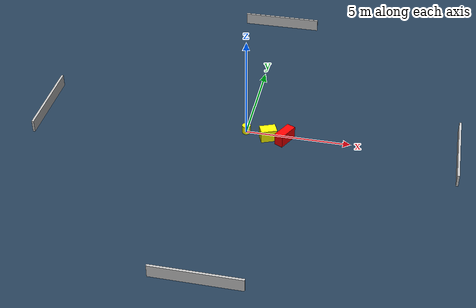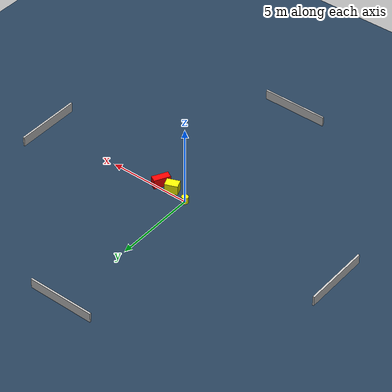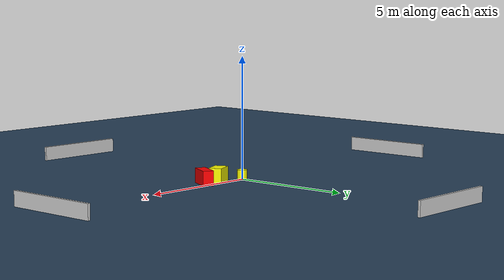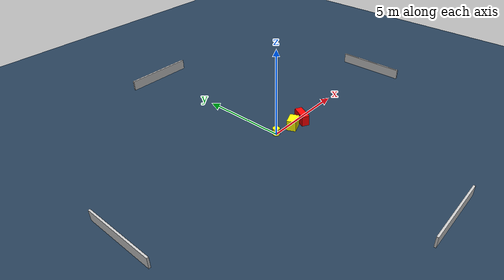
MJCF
<?xml version="1.0" ?>
<mujoco model="generated_environment">
  <option timestep="0.01" integrator="RK4" cone="elliptic"/>
  <default>
    <geom density="1"/>
  </default>
  <asset>
    <texture builtin="gradient" height="3072" name="skybox" rgb1="0.3 0.5 0.7" rgb2="0 0 0" type="skybox" width="512"/>
    <texture builtin="checker" height="300" name="groundplane" rgb1="0.2 0.3 0.4" rgb2="0.1 0.2 0.3" type="2d" width="300"/>
    <material name="groundplane" reflectance="0.2" texrepeat="5 5" texture="groundplane"/>
  </asset>
  <worldbody>
    <light dir="0 0 -1" directional="true" pos="0 0 1.5"/>
    <geom condim="3" friction="0.5 0.005 0.001" material="groundplane" name="floor" pos="0 0 0" size="0 0 0.05" type="plane"/>
    <body name="walls">
      <geom name="wall_1" condim="4" pos="-10.0 0.0 0.3" rgba="0.800000011920929 0.800000011920929 0.800000011920929 1.0" size="0.05 2.0 0.3" type="box"/>
      <geom name="wall_2" condim="4" pos="10.0 0.0 0.3" rgba="0.800000011920929 0.800000011920929 0.800000011920929 1.0" size="0.05 2.0 0.3" type="box"/>
      <geom name="wall_3" condim="4" pos="0.0 -10.0 0.3" rgba="0.800000011920929 0.800000011920929 0.800000011920929 1.0" size="2.0 0.05 0.3" type="box"/>
      <geom name="wall_4" condim="4" pos="0.0 10.0 0.3" rgba="0.800000011920929 0.800000011920929 0.800000011920929 1.0" size="2.0 0.05 0.3" type="box"/>
    </body>
    <body name="robot">
      <joint name="joint_x" type="slide" pos="0 0 0" axis="1 0 0"/>
      <joint name="joint_y" type="slide" pos="0 0 0" axis="0 1 0"/>
      <geom name="robot" type="cylinder" pos="0.0 0.0 0.2" size="0.2 0.2 0.0" mass="5.0" friction="1.0 0.005 0.0001" condim="4" rgba="1.0 1.0 0.0 1.0"/>
    </body>
    <body name="obstacle_1_movable">
      <geom name="obstacle_1_movable" condim="4" pos="1.1112667319985299 -0.2822645521497774 0.3" euler="0 0 292.03722374947967" friction="0.0 0.005 0.001" rgba="1.0 1.0 0.0 1.0" size="0.26556602186066636 0.38248682607187046 0.3" type="box" mass="0.1"/>
      <joint type="free"/>
    </body>
    <body name="obstacle_2_static">
      <geom name="obstacle_2_static" condim="4" pos="1.9175622932272016 -0.29148940015863867 0.3" euler="0 0 242.4507938796007" friction="0.0 0.005 0.001" rgba="1.0 0.0 0.0 1.0" size="0.5007754330728764 0.2141924727940429 0.3" type="box"/>
    </body>
  </worldbody>
  <actuator>
    <motor name="actuator_x" joint="joint_x" gear="1" ctrlrange="-1 1"/>
    <motor name="actuator_y" joint="joint_y" gear="1" ctrlrange="-1 1"/>
  </actuator>
</mujoco>
